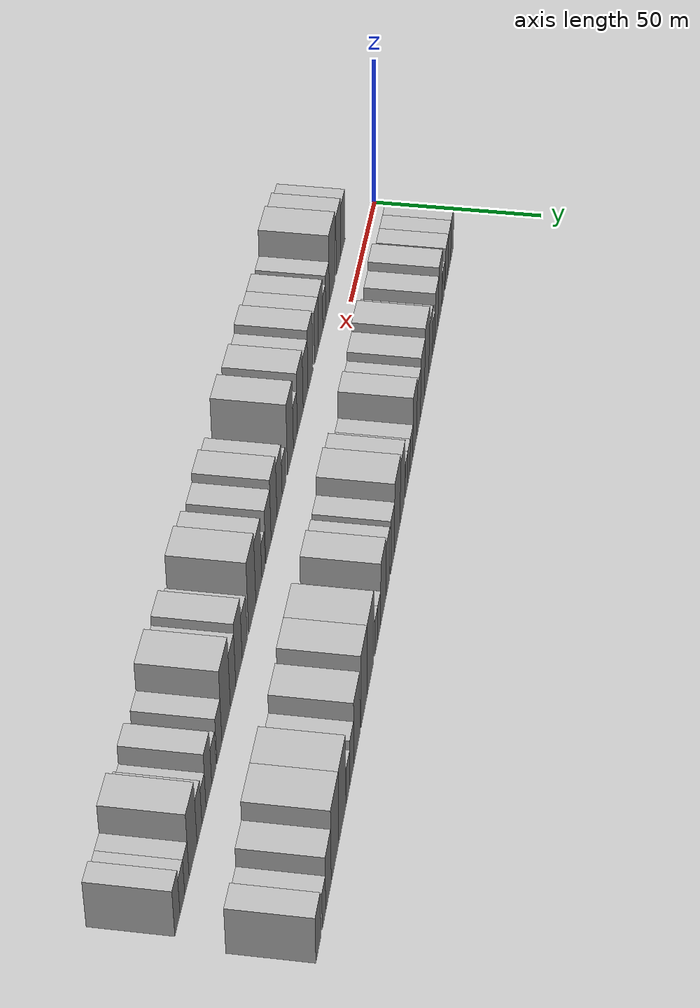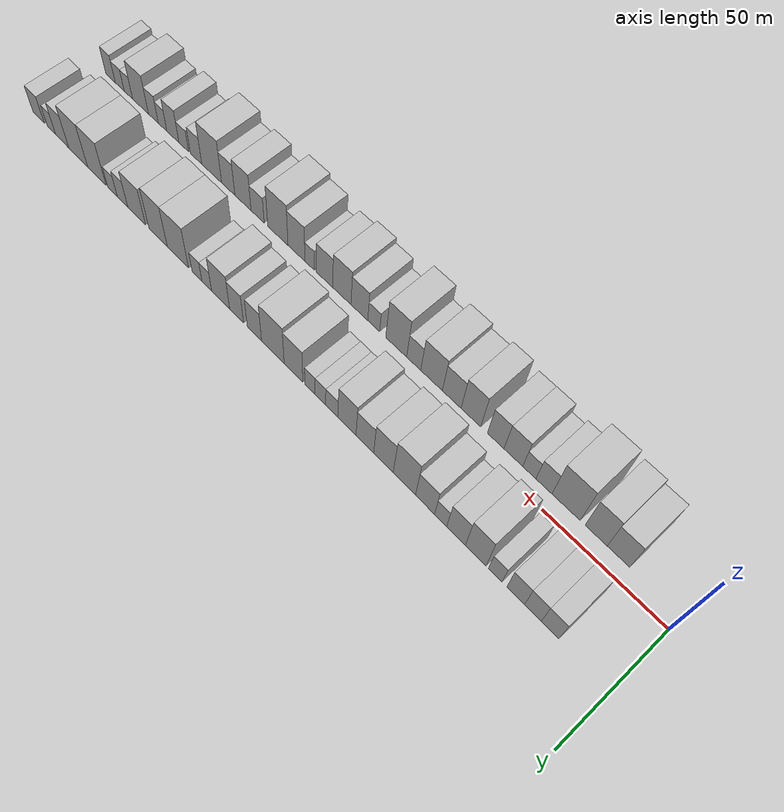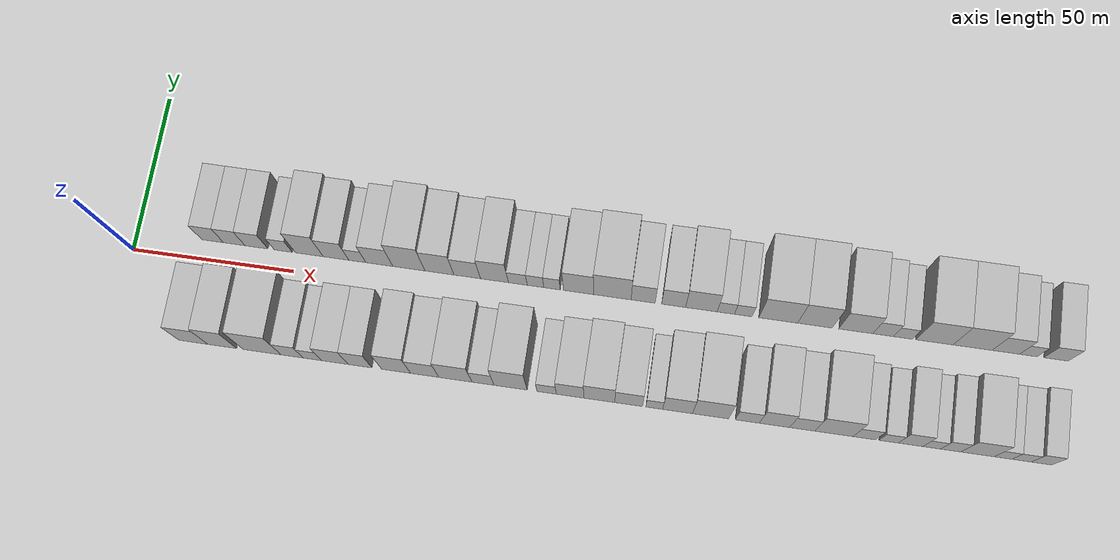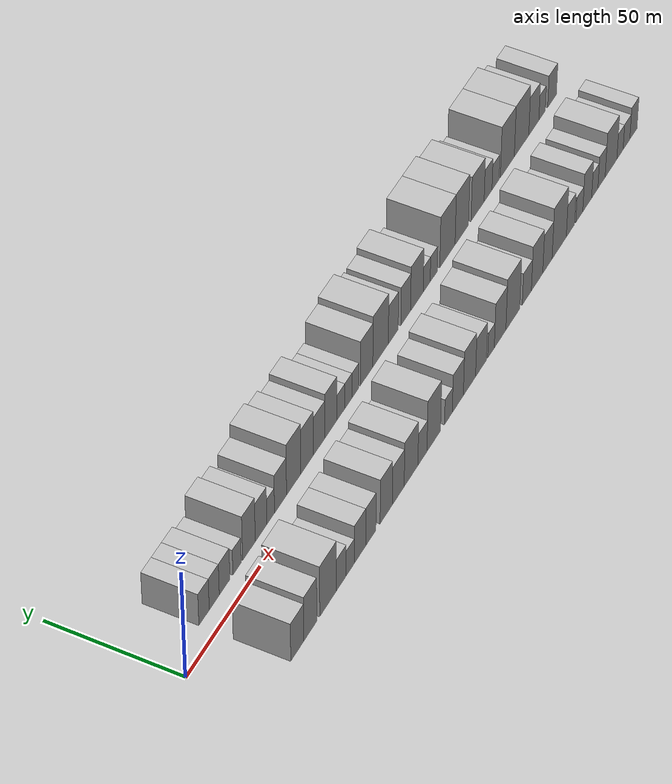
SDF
<sdf version="1.6">
 <world name="default">
  <scene>
   <sky><clouds><speed>12</speed></clouds></sky>
   <ambient>0.4 0.4 0.4 1</ambient>
   <background>0.7 0.7 0.7 1</background>
   <shadows>1</shadows>
  </scene>
  <gravity>0 0 -9.8066</gravity>
  <magnetic_field>6e-06 2.3e-05 -4.2e-05</magnetic_field>
  <physics default="0" name="default_physics" type="ode">
   <ode>
    <solver>
     <type>quick</type>
     <iters>10</iters>
     <sor>1.0</sor>
     <use_dynamic_moi_rescaling>0</use_dynamic_moi_rescaling>
    </solver>
    <constraints>
     <cfm>0</cfm>
     <erp>0.2</erp>
     <contact_max_correcting_vel>100</contact_max_correcting_vel>
     <contact_surface_layer>0.001</contact_surface_layer>
    </constraints>
   </ode>
   <max_step_size>0.004</max_step_size>
   <real_time_factor>1</real_time_factor>
   <real_time_update_rate>250</real_time_update_rate>
  </physics>
  <light name="sun" type="directional">
   <pose>0 0 10 0 0 0</pose>
   <diffuse>0.8 0.8 0.8 1</diffuse>
   <specular>0.2 0.2 0.2 1</specular>
   <attenuation>
    <range>1000</range>
    <constant>0.9</constant>
    <linear>0.01</linear>
    <quadratic>0.001</quadratic>
   </attenuation>
   <direction>-0.5 0.1 -0.9</direction>
  </light>
  <model name="building_1">
   <static>1</static>
   <pose>23.4662 16.0000 0 0.000000 0.000000 1.570796</pose>
   <link name="link">
    <pose>0 0 7.50 0 0 0</pose>
    <collision name="collision"><geometry><box><size>20.0000 6.9323 15.0000</size></box></geometry></collision>
    <visual name="visual">
     <cast_shadows>0</cast_shadows>
     <geometry><box><size>20.0000 6.9323 15.0000</size></box></geometry>
     <material>
      <script>
       <uri>model://HANNAS_wall/materials/scripts</uri>
       <uri>model://HANNAS_wall/materials/textures</uri>
       <name>vrc/HANNAS_wall</name>
      </script>
     </material>
    </visual>
   </link>
  </model>
  <model name="building_2">
   <static>1</static>
   <pose>30.3055 16.0000 0 0.000000 0.000000 1.570796</pose>
   <link name="link">
    <pose>0 0 7.50 0 0 0</pose>
    <collision name="collision"><geometry><box><size>20.0000 6.7464 15.0000</size></box></geometry></collision>
    <visual name="visual">
     <cast_shadows>0</cast_shadows>
     <geometry><box><size>20.0000 6.7464 15.0000</size></box></geometry>
     <material>
      <script>
       <uri>model://HANNAS_wall/materials/scripts</uri>
       <uri>model://HANNAS_wall/materials/textures</uri>
       <name>vrc/HANNAS_wall</name>
      </script>
     </material>
    </visual>
   </link>
  </model>
  <model name="building_3">
   <static>1</static>
   <pose>37.2705 16.0000 0 0.000000 0.000000 1.570796</pose>
   <link name="link">
    <pose>0 0 7.50 0 0 0</pose>
    <collision name="collision"><geometry><box><size>20.0000 7.1836 15.0000</size></box></geometry></collision>
    <visual name="visual">
     <cast_shadows>0</cast_shadows>
     <geometry><box><size>20.0000 7.1836 15.0000</size></box></geometry>
     <material>
      <script>
       <uri>model://HANNAS_wall/materials/scripts</uri>
       <uri>model://HANNAS_wall/materials/textures</uri>
       <name>vrc/HANNAS_wall</name>
      </script>
     </material>
    </visual>
   </link>
  </model>
  <model name="building_4">
   <static>1</static>
   <pose>45.6814 16.0000 0 0.000000 0.000000 1.570796</pose>
   <link name="link">
    <pose>0 0 6.00 0 0 0</pose>
    <collision name="collision"><geometry><box><size>20.0000 5.6382 12.0000</size></box></geometry></collision>
    <visual name="visual">
     <cast_shadows>0</cast_shadows>
     <geometry><box><size>20.0000 5.6382 12.0000</size></box></geometry>
     <material>
      <script>
       <uri>model://HANNAS_wall/materials/scripts</uri>
       <uri>model://HANNAS_wall/materials/textures</uri>
       <name>vrc/HANNAS_wall</name>
      </script>
     </material>
    </visual>
   </link>
  </model>
  <model name="building_5">
   <static>1</static>
   <pose>53.8715 16.0000 0 0.000000 0.000000 1.570796</pose>
   <link name="link">
    <pose>0 0 10.50 0 0 0</pose>
    <collision name="collision"><geometry><box><size>20.0000 8.7419 21.0000</size></box></geometry></collision>
    <visual name="visual">
     <cast_shadows>0</cast_shadows>
     <geometry><box><size>20.0000 8.7419 21.0000</size></box></geometry>
     <material>
      <script>
       <uri>model://HANNAS_wall/materials/scripts</uri>
       <uri>model://HANNAS_wall/materials/textures</uri>
       <name>vrc/HANNAS_wall</name>
      </script>
     </material>
    </visual>
   </link>
  </model>
  <model name="building_6">
   <static>1</static>
   <pose>62.2580 16.0000 0 0.000000 0.000000 1.570796</pose>
   <link name="link">
    <pose>0 0 9.00 0 0 0</pose>
    <collision name="collision"><geometry><box><size>20.0000 8.0312 18.0000</size></box></geometry></collision>
    <visual name="visual">
     <cast_shadows>0</cast_shadows>
     <geometry><box><size>20.0000 8.0312 18.0000</size></box></geometry>
     <material>
      <script>
       <uri>model://HANNAS_wall/materials/scripts</uri>
       <uri>model://HANNAS_wall/materials/textures</uri>
       <name>vrc/HANNAS_wall</name>
      </script>
     </material>
    </visual>
   </link>
  </model>
  <model name="building_7">
   <static>1</static>
   <pose>68.9235 16.0000 0 0.000000 0.000000 1.570796</pose>
   <link name="link">
    <pose>0 0 6.00 0 0 0</pose>
    <collision name="collision"><geometry><box><size>20.0000 5.2998 12.0000</size></box></geometry></collision>
    <visual name="visual">
     <cast_shadows>0</cast_shadows>
     <geometry><box><size>20.0000 5.2998 12.0000</size></box></geometry>
     <material>
      <script>
       <uri>model://HANNAS_wall/materials/scripts</uri>
       <uri>model://HANNAS_wall/materials/textures</uri>
       <name>vrc/HANNAS_wall</name>
      </script>
     </material>
    </visual>
   </link>
  </model>
  <model name="building_8">
   <static>1</static>
   <pose>75.7848 16.0000 0 0.000000 0.000000 1.570796</pose>
   <link name="link">
    <pose>0 0 9.00 0 0 0</pose>
    <collision name="collision"><geometry><box><size>20.0000 8.4229 18.0000</size></box></geometry></collision>
    <visual name="visual">
     <cast_shadows>0</cast_shadows>
     <geometry><box><size>20.0000 8.4229 18.0000</size></box></geometry>
     <material>
      <script>
       <uri>model://HANNAS_wall/materials/scripts</uri>
       <uri>model://HANNAS_wall/materials/textures</uri>
       <name>vrc/HANNAS_wall</name>
      </script>
     </material>
    </visual>
   </link>
  </model>
  <model name="building_9">
   <static>1</static>
   <pose>85.0239 16.0000 0 0.000000 0.000000 1.570796</pose>
   <link name="link">
    <pose>0 0 12.00 0 0 0</pose>
    <collision name="collision"><geometry><box><size>20.0000 10.0552 24.0000</size></box></geometry></collision>
    <visual name="visual">
     <cast_shadows>0</cast_shadows>
     <geometry><box><size>20.0000 10.0552 24.0000</size></box></geometry>
     <material>
      <script>
       <uri>model://HANNAS_wall/materials/scripts</uri>
       <uri>model://HANNAS_wall/materials/textures</uri>
       <name>vrc/HANNAS_wall</name>
      </script>
     </material>
    </visual>
   </link>
  </model>
  <model name="building_10">
   <static>1</static>
   <pose>94.5617 16.0000 0 0.000000 0.000000 1.570796</pose>
   <link name="link">
    <pose>0 0 10.50 0 0 0</pose>
    <collision name="collision"><geometry><box><size>20.0000 9.0204 21.0000</size></box></geometry></collision>
    <visual name="visual">
     <cast_shadows>0</cast_shadows>
     <geometry><box><size>20.0000 9.0204 21.0000</size></box></geometry>
     <material>
      <script>
       <uri>model://HANNAS_wall/materials/scripts</uri>
       <uri>model://HANNAS_wall/materials/textures</uri>
       <name>vrc/HANNAS_wall</name>
      </script>
     </material>
    </visual>
   </link>
  </model>
  <model name="building_11">
   <static>1</static>
   <pose>103.1988 16.0000 0 0.000000 0.000000 1.570796</pose>
   <link name="link">
    <pose>0 0 9.00 0 0 0</pose>
    <collision name="collision"><geometry><box><size>20.0000 8.2538 18.0000</size></box></geometry></collision>
    <visual name="visual">
     <cast_shadows>0</cast_shadows>
     <geometry><box><size>20.0000 8.2538 18.0000</size></box></geometry>
     <material>
      <script>
       <uri>model://HANNAS_wall/materials/scripts</uri>
       <uri>model://HANNAS_wall/materials/textures</uri>
       <name>vrc/HANNAS_wall</name>
      </script>
     </material>
    </visual>
   </link>
  </model>
  <model name="building_12">
   <static>1</static>
   <pose>111.6515 16.0000 0 0.000000 0.000000 1.570796</pose>
   <link name="link">
    <pose>0 0 10.50 0 0 0</pose>
    <collision name="collision"><geometry><box><size>20.0000 8.6517 21.0000</size></box></geometry></collision>
    <visual name="visual">
     <cast_shadows>0</cast_shadows>
     <geometry><box><size>20.0000 8.6517 21.0000</size></box></geometry>
     <material>
      <script>
       <uri>model://HANNAS_wall/materials/scripts</uri>
       <uri>model://HANNAS_wall/materials/textures</uri>
       <name>vrc/HANNAS_wall</name>
      </script>
     </material>
    </visual>
   </link>
  </model>
  <model name="building_13">
   <static>1</static>
   <pose>118.8932 16.0000 0 0.000000 0.000000 1.570796</pose>
   <link name="link">
    <pose>0 0 6.00 0 0 0</pose>
    <collision name="collision"><geometry><box><size>20.0000 5.8317 12.0000</size></box></geometry></collision>
    <visual name="visual">
     <cast_shadows>0</cast_shadows>
     <geometry><box><size>20.0000 5.8317 12.0000</size></box></geometry>
     <material>
      <script>
       <uri>model://HANNAS_wall/materials/scripts</uri>
       <uri>model://HANNAS_wall/materials/textures</uri>
       <name>vrc/HANNAS_wall</name>
      </script>
     </material>
    </visual>
   </link>
  </model>
  <model name="building_14">
   <static>1</static>
   <pose>124.3802 16.0000 0 0.000000 0.000000 1.570796</pose>
   <link name="link">
    <pose>0 0 6.00 0 0 0</pose>
    <collision name="collision"><geometry><box><size>20.0000 5.1422 12.0000</size></box></geometry></collision>
    <visual name="visual">
     <cast_shadows>0</cast_shadows>
     <geometry><box><size>20.0000 5.1422 12.0000</size></box></geometry>
     <material>
      <script>
       <uri>model://HANNAS_wall/materials/scripts</uri>
       <uri>model://HANNAS_wall/materials/textures</uri>
       <name>vrc/HANNAS_wall</name>
      </script>
     </material>
    </visual>
   </link>
  </model>
  <model name="building_15">
   <static>1</static>
   <pose>129.4911 16.0000 0 0.000000 0.000000 1.570796</pose>
   <link name="link">
    <pose>0 0 6.00 0 0 0</pose>
    <collision name="collision"><geometry><box><size>20.0000 5.0797 12.0000</size></box></geometry></collision>
    <visual name="visual">
     <cast_shadows>0</cast_shadows>
     <geometry><box><size>20.0000 5.0797 12.0000</size></box></geometry>
     <material>
      <script>
       <uri>model://HANNAS_wall/materials/scripts</uri>
       <uri>model://HANNAS_wall/materials/textures</uri>
       <name>vrc/HANNAS_wall</name>
      </script>
     </material>
    </visual>
   </link>
  </model>
  <model name="building_16">
   <static>1</static>
   <pose>137.6855 16.0000 0 0.000000 0.000000 1.570796</pose>
   <link name="link">
    <pose>0 0 10.50 0 0 0</pose>
    <collision name="collision"><geometry><box><size>20.0000 9.3090 21.0000</size></box></geometry></collision>
    <visual name="visual">
     <cast_shadows>0</cast_shadows>
     <geometry><box><size>20.0000 9.3090 21.0000</size></box></geometry>
     <material>
      <script>
       <uri>model://HANNAS_wall/materials/scripts</uri>
       <uri>model://HANNAS_wall/materials/textures</uri>
       <name>vrc/HANNAS_wall</name>
      </script>
     </material>
    </visual>
   </link>
  </model>
  <model name="building_17">
   <static>1</static>
   <pose>148.1238 16.0000 0 0.000000 0.000000 1.570796</pose>
   <link name="link">
    <pose>0 0 12.00 0 0 0</pose>
    <collision name="collision"><geometry><box><size>20.0000 11.5676 24.0000</size></box></geometry></collision>
    <visual name="visual">
     <cast_shadows>0</cast_shadows>
     <geometry><box><size>20.0000 11.5676 24.0000</size></box></geometry>
     <material>
      <script>
       <uri>model://HANNAS_wall/materials/scripts</uri>
       <uri>model://HANNAS_wall/materials/textures</uri>
       <name>vrc/HANNAS_wall</name>
      </script>
     </material>
    </visual>
   </link>
  </model>
  <model name="building_18">
   <static>1</static>
   <pose>157.6105 16.0000 0 0.000000 0.000000 1.570796</pose>
   <link name="link">
    <pose>0 0 9.00 0 0 0</pose>
    <collision name="collision"><geometry><box><size>20.0000 7.4056 18.0000</size></box></geometry></collision>
    <visual name="visual">
     <cast_shadows>0</cast_shadows>
     <geometry><box><size>20.0000 7.4056 18.0000</size></box></geometry>
     <material>
      <script>
       <uri>model://HANNAS_wall/materials/scripts</uri>
       <uri>model://HANNAS_wall/materials/textures</uri>
       <name>vrc/HANNAS_wall</name>
      </script>
     </material>
    </visual>
   </link>
  </model>
  <model name="building_19">
   <static>1</static>
   <pose>166.9849 16.0000 0 0.000000 0.000000 1.570796</pose>
   <link name="link">
    <pose>0 0 9.00 0 0 0</pose>
    <collision name="collision"><geometry><box><size>20.0000 7.3432 18.0000</size></box></geometry></collision>
    <visual name="visual">
     <cast_shadows>0</cast_shadows>
     <geometry><box><size>20.0000 7.3432 18.0000</size></box></geometry>
     <material>
      <script>
       <uri>model://HANNAS_wall/materials/scripts</uri>
       <uri>model://HANNAS_wall/materials/textures</uri>
       <name>vrc/HANNAS_wall</name>
      </script>
     </material>
    </visual>
   </link>
  </model>
  <model name="building_20">
   <static>1</static>
   <pose>175.5093 16.0000 0 0.000000 0.000000 1.570796</pose>
   <link name="link">
    <pose>0 0 10.50 0 0 0</pose>
    <collision name="collision"><geometry><box><size>20.0000 9.7057 21.0000</size></box></geometry></collision>
    <visual name="visual">
     <cast_shadows>0</cast_shadows>
     <geometry><box><size>20.0000 9.7057 21.0000</size></box></geometry>
     <material>
      <script>
       <uri>model://HANNAS_wall/materials/scripts</uri>
       <uri>model://HANNAS_wall/materials/textures</uri>
       <name>vrc/HANNAS_wall</name>
      </script>
     </material>
    </visual>
   </link>
  </model>
  <model name="building_21">
   <static>1</static>
   <pose>183.0260 16.0000 0 0.000000 0.000000 1.570796</pose>
   <link name="link">
    <pose>0 0 6.00 0 0 0</pose>
    <collision name="collision"><geometry><box><size>20.0000 5.3277 12.0000</size></box></geometry></collision>
    <visual name="visual">
     <cast_shadows>0</cast_shadows>
     <geometry><box><size>20.0000 5.3277 12.0000</size></box></geometry>
     <material>
      <script>
       <uri>model://HANNAS_wall/materials/scripts</uri>
       <uri>model://HANNAS_wall/materials/textures</uri>
       <name>vrc/HANNAS_wall</name>
      </script>
     </material>
    </visual>
   </link>
  </model>
  <model name="building_22">
   <static>1</static>
   <pose>188.3907 16.0000 0 0.000000 0.000000 1.570796</pose>
   <link name="link">
    <pose>0 0 6.00 0 0 0</pose>
    <collision name="collision"><geometry><box><size>20.0000 5.4015 12.0000</size></box></geometry></collision>
    <visual name="visual">
     <cast_shadows>0</cast_shadows>
     <geometry><box><size>20.0000 5.4015 12.0000</size></box></geometry>
     <material>
      <script>
       <uri>model://HANNAS_wall/materials/scripts</uri>
       <uri>model://HANNAS_wall/materials/textures</uri>
       <name>vrc/HANNAS_wall</name>
      </script>
     </material>
    </visual>
   </link>
  </model>
  <model name="building_23">
   <static>1</static>
   <pose>199.0637 16.0000 0 0.000000 0.000000 1.570796</pose>
   <link name="link">
    <pose>0 0 12.00 0 0 0</pose>
    <collision name="collision"><geometry><box><size>20.0000 11.9444 24.0000</size></box></geometry></collision>
    <visual name="visual">
     <cast_shadows>0</cast_shadows>
     <geometry><box><size>20.0000 11.9444 24.0000</size></box></geometry>
     <material>
      <script>
       <uri>model://HANNAS_wall/materials/scripts</uri>
       <uri>model://HANNAS_wall/materials/textures</uri>
       <name>vrc/HANNAS_wall</name>
      </script>
     </material>
    </visual>
   </link>
  </model>
  <model name="building_24">
   <static>1</static>
   <pose>210.3051 16.0000 0 0.000000 0.000000 1.570796</pose>
   <link name="link">
    <pose>0 0 12.00 0 0 0</pose>
    <collision name="collision"><geometry><box><size>20.0000 10.5384 24.0000</size></box></geometry></collision>
    <visual name="visual">
     <cast_shadows>0</cast_shadows>
     <geometry><box><size>20.0000 10.5384 24.0000</size></box></geometry>
     <material>
      <script>
       <uri>model://HANNAS_wall/materials/scripts</uri>
       <uri>model://HANNAS_wall/materials/textures</uri>
       <name>vrc/HANNAS_wall</name>
      </script>
     </material>
    </visual>
   </link>
  </model>
  <model name="building_25">
   <static>1</static>
   <pose>222.7786 16.0000 0 0.000000 0.000000 1.570796</pose>
   <link name="link">
    <pose>0 0 10.50 0 0 0</pose>
    <collision name="collision"><geometry><box><size>20.0000 10.4088 21.0000</size></box></geometry></collision>
    <visual name="visual">
     <cast_shadows>0</cast_shadows>
     <geometry><box><size>20.0000 10.4088 21.0000</size></box></geometry>
     <material>
      <script>
       <uri>model://HANNAS_wall/materials/scripts</uri>
       <uri>model://HANNAS_wall/materials/textures</uri>
       <name>vrc/HANNAS_wall</name>
      </script>
     </material>
    </visual>
   </link>
  </model>
  <model name="building_26">
   <static>1</static>
   <pose>231.1399 16.0000 0 0.000000 0.000000 1.570796</pose>
   <link name="link">
    <pose>0 0 7.50 0 0 0</pose>
    <collision name="collision"><geometry><box><size>20.0000 6.3137 15.0000</size></box></geometry></collision>
    <visual name="visual">
     <cast_shadows>0</cast_shadows>
     <geometry><box><size>20.0000 6.3137 15.0000</size></box></geometry>
     <material>
      <script>
       <uri>model://HANNAS_wall/materials/scripts</uri>
       <uri>model://HANNAS_wall/materials/textures</uri>
       <name>vrc/HANNAS_wall</name>
      </script>
     </material>
    </visual>
   </link>
  </model>
  <model name="building_27">
   <static>1</static>
   <pose>237.1442 16.0000 0 0.000000 0.000000 1.570796</pose>
   <link name="link">
    <pose>0 0 6.00 0 0 0</pose>
    <collision name="collision"><geometry><box><size>20.0000 5.6949 12.0000</size></box></geometry></collision>
    <visual name="visual">
     <cast_shadows>0</cast_shadows>
     <geometry><box><size>20.0000 5.6949 12.0000</size></box></geometry>
     <material>
      <script>
       <uri>model://HANNAS_wall/materials/scripts</uri>
       <uri>model://HANNAS_wall/materials/textures</uri>
       <name>vrc/HANNAS_wall</name>
      </script>
     </material>
    </visual>
   </link>
  </model>
  <model name="building_28">
   <static>1</static>
   <pose>246.6571 16.0000 0 0.000000 0.000000 1.570796</pose>
   <link name="link">
    <pose>0 0 12.00 0 0 0</pose>
    <collision name="collision"><geometry><box><size>20.0000 11.3309 24.0000</size></box></geometry></collision>
    <visual name="visual">
     <cast_shadows>0</cast_shadows>
     <geometry><box><size>20.0000 11.3309 24.0000</size></box></geometry>
     <material>
      <script>
       <uri>model://HANNAS_wall/materials/scripts</uri>
       <uri>model://HANNAS_wall/materials/textures</uri>
       <name>vrc/HANNAS_wall</name>
      </script>
     </material>
    </visual>
   </link>
  </model>
  <model name="building_29">
   <static>1</static>
   <pose>258.2216 16.0000 0 0.000000 0.000000 1.570796</pose>
   <link name="link">
    <pose>0 0 12.00 0 0 0</pose>
    <collision name="collision"><geometry><box><size>20.0000 11.7980 24.0000</size></box></geometry></collision>
    <visual name="visual">
     <cast_shadows>0</cast_shadows>
     <geometry><box><size>20.0000 11.7980 24.0000</size></box></geometry>
     <material>
      <script>
       <uri>model://HANNAS_wall/materials/scripts</uri>
       <uri>model://HANNAS_wall/materials/textures</uri>
       <name>vrc/HANNAS_wall</name>
      </script>
     </material>
    </visual>
   </link>
  </model>
  <model name="building_30">
   <static>1</static>
   <pose>268.2903 16.0000 0 0.000000 0.000000 1.570796</pose>
   <link name="link">
    <pose>0 0 9.00 0 0 0</pose>
    <collision name="collision"><geometry><box><size>20.0000 8.3393 18.0000</size></box></geometry></collision>
    <visual name="visual">
     <cast_shadows>0</cast_shadows>
     <geometry><box><size>20.0000 8.3393 18.0000</size></box></geometry>
     <material>
      <script>
       <uri>model://HANNAS_wall/materials/scripts</uri>
       <uri>model://HANNAS_wall/materials/textures</uri>
       <name>vrc/HANNAS_wall</name>
      </script>
     </material>
    </visual>
   </link>
  </model>
  <model name="building_31">
   <static>1</static>
   <pose>275.1168 16.0000 0 0.000000 0.000000 1.570796</pose>
   <link name="link">
    <pose>0 0 6.00 0 0 0</pose>
    <collision name="collision"><geometry><box><size>20.0000 5.3137 12.0000</size></box></geometry></collision>
    <visual name="visual">
     <cast_shadows>0</cast_shadows>
     <geometry><box><size>20.0000 5.3137 12.0000</size></box></geometry>
     <material>
      <script>
       <uri>model://HANNAS_wall/materials/scripts</uri>
       <uri>model://HANNAS_wall/materials/textures</uri>
       <name>vrc/HANNAS_wall</name>
      </script>
     </material>
    </visual>
   </link>
  </model>
  <model name="building_32">
   <static>1</static>
   <pose>283.4479 16.0000 0 0.000000 0.000000 1.570796</pose>
   <link name="link">
    <pose>0 0 7.50 0 0 0</pose>
    <collision name="collision"><geometry><box><size>20.0000 7.3486 15.0000</size></box></geometry></collision>
    <visual name="visual">
     <cast_shadows>0</cast_shadows>
     <geometry><box><size>20.0000 7.3486 15.0000</size></box></geometry>
     <material>
      <script>
       <uri>model://HANNAS_wall/materials/scripts</uri>
       <uri>model://HANNAS_wall/materials/textures</uri>
       <name>vrc/HANNAS_wall</name>
      </script>
     </material>
    </visual>
   </link>
  </model>
  <model name="building_33">
   <static>1</static>
   <pose>24.4826 -16.0000 0 0.000000 0.000000 1.570796</pose>
   <link name="link">
    <pose>0 0 9.00 0 0 0</pose>
    <collision name="collision"><geometry><box><size>20.0000 8.9652 18.0000</size></box></geometry></collision>
    <visual name="visual">
     <cast_shadows>0</cast_shadows>
     <geometry><box><size>20.0000 8.9652 18.0000</size></box></geometry>
     <material>
      <script>
       <uri>model://HANNAS_wall/materials/scripts</uri>
       <uri>model://HANNAS_wall/materials/textures</uri>
       <name>vrc/HANNAS_wall</name>
      </script>
     </material>
    </visual>
   </link>
  </model>
  <model name="building_34">
   <static>1</static>
   <pose>33.4205 -16.0000 0 0.000000 0.000000 1.570796</pose>
   <link name="link">
    <pose>0 0 10.50 0 0 0</pose>
    <collision name="collision"><geometry><box><size>20.0000 8.9107 21.0000</size></box></geometry></collision>
    <visual name="visual">
     <cast_shadows>0</cast_shadows>
     <geometry><box><size>20.0000 8.9107 21.0000</size></box></geometry>
     <material>
      <script>
       <uri>model://HANNAS_wall/materials/scripts</uri>
       <uri>model://HANNAS_wall/materials/textures</uri>
       <name>vrc/HANNAS_wall</name>
      </script>
     </material>
    </visual>
   </link>
  </model>
  <model name="building_35">
   <static>1</static>
   <pose>45.7450 -16.0000 0 0.000000 0.000000 1.570796</pose>
   <link name="link">
    <pose>0 0 12.00 0 0 0</pose>
    <collision name="collision"><geometry><box><size>20.0000 11.7382 24.0000</size></box></geometry></collision>
    <visual name="visual">
     <cast_shadows>0</cast_shadows>
     <geometry><box><size>20.0000 11.7382 24.0000</size></box></geometry>
     <material>
      <script>
       <uri>model://HANNAS_wall/materials/scripts</uri>
       <uri>model://HANNAS_wall/materials/textures</uri>
       <name>vrc/HANNAS_wall</name>
      </script>
     </material>
    </visual>
   </link>
  </model>
  <model name="building_36">
   <static>1</static>
   <pose>55.0073 -16.0000 0 0.000000 0.000000 1.570796</pose>
   <link name="link">
    <pose>0 0 7.50 0 0 0</pose>
    <collision name="collision"><geometry><box><size>20.0000 6.7863 15.0000</size></box></geometry></collision>
    <visual name="visual">
     <cast_shadows>0</cast_shadows>
     <geometry><box><size>20.0000 6.7863 15.0000</size></box></geometry>
     <material>
      <script>
       <uri>model://HANNAS_wall/materials/scripts</uri>
       <uri>model://HANNAS_wall/materials/textures</uri>
       <name>vrc/HANNAS_wall</name>
      </script>
     </material>
    </visual>
   </link>
  </model>
  <model name="building_37">
   <static>1</static>
   <pose>61.2317 -16.0000 0 0.000000 0.000000 1.570796</pose>
   <link name="link">
    <pose>0 0 6.00 0 0 0</pose>
    <collision name="collision"><geometry><box><size>20.0000 5.6625 12.0000</size></box></geometry></collision>
    <visual name="visual">
     <cast_shadows>0</cast_shadows>
     <geometry><box><size>20.0000 5.6625 12.0000</size></box></geometry>
     <material>
      <script>
       <uri>model://HANNAS_wall/materials/scripts</uri>
       <uri>model://HANNAS_wall/materials/textures</uri>
       <name>vrc/HANNAS_wall</name>
      </script>
     </material>
    </visual>
   </link>
  </model>
  <model name="building_38">
   <static>1</static>
   <pose>68.1342 -16.0000 0 0.000000 0.000000 1.570796</pose>
   <link name="link">
    <pose>0 0 9.00 0 0 0</pose>
    <collision name="collision"><geometry><box><size>20.0000 8.1426 18.0000</size></box></geometry></collision>
    <visual name="visual">
     <cast_shadows>0</cast_shadows>
     <geometry><box><size>20.0000 8.1426 18.0000</size></box></geometry>
     <material>
      <script>
       <uri>model://HANNAS_wall/materials/scripts</uri>
       <uri>model://HANNAS_wall/materials/textures</uri>
       <name>vrc/HANNAS_wall</name>
      </script>
     </material>
    </visual>
   </link>
  </model>
  <model name="building_39">
   <static>1</static>
   <pose>75.8522 -16.0000 0 0.000000 0.000000 1.570796</pose>
   <link name="link">
    <pose>0 0 9.00 0 0 0</pose>
    <collision name="collision"><geometry><box><size>20.0000 7.2933 18.0000</size></box></geometry></collision>
    <visual name="visual">
     <cast_shadows>0</cast_shadows>
     <geometry><box><size>20.0000 7.2933 18.0000</size></box></geometry>
     <material>
      <script>
       <uri>model://HANNAS_wall/materials/scripts</uri>
       <uri>model://HANNAS_wall/materials/textures</uri>
       <name>vrc/HANNAS_wall</name>
      </script>
     </material>
    </visual>
   </link>
  </model>
  <model name="building_40">
   <static>1</static>
   <pose>86.9302 -16.0000 0 0.000000 0.000000 1.570796</pose>
   <link name="link">
    <pose>0 0 10.50 0 0 0</pose>
    <collision name="collision"><geometry><box><size>20.0000 8.8628 21.0000</size></box></geometry></collision>
    <visual name="visual">
     <cast_shadows>0</cast_shadows>
     <geometry><box><size>20.0000 8.8628 21.0000</size></box></geometry>
     <material>
      <script>
       <uri>model://HANNAS_wall/materials/scripts</uri>
       <uri>model://HANNAS_wall/materials/textures</uri>
       <name>vrc/HANNAS_wall</name>
      </script>
     </material>
    </visual>
   </link>
  </model>
  <model name="building_41">
   <static>1</static>
   <pose>95.6631 -16.0000 0 0.000000 0.000000 1.570796</pose>
   <link name="link">
    <pose>0 0 9.00 0 0 0</pose>
    <collision name="collision"><geometry><box><size>20.0000 8.6029 18.0000</size></box></geometry></collision>
    <visual name="visual">
     <cast_shadows>0</cast_shadows>
     <geometry><box><size>20.0000 8.6029 18.0000</size></box></geometry>
     <material>
      <script>
       <uri>model://HANNAS_wall/materials/scripts</uri>
       <uri>model://HANNAS_wall/materials/textures</uri>
       <name>vrc/HANNAS_wall</name>
      </script>
     </material>
    </visual>
   </link>
  </model>
  <model name="building_42">
   <static>1</static>
   <pose>105.0150 -16.0000 0 0.000000 0.000000 1.570796</pose>
   <link name="link">
    <pose>0 0 10.50 0 0 0</pose>
    <collision name="collision"><geometry><box><size>20.0000 10.1010 21.0000</size></box></geometry></collision>
    <visual name="visual">
     <cast_shadows>0</cast_shadows>
     <geometry><box><size>20.0000 10.1010 21.0000</size></box></geometry>
     <material>
      <script>
       <uri>model://HANNAS_wall/materials/scripts</uri>
       <uri>model://HANNAS_wall/materials/textures</uri>
       <name>vrc/HANNAS_wall</name>
      </script>
     </material>
    </visual>
   </link>
  </model>
  <model name="building_43">
   <static>1</static>
   <pose>113.4232 -16.0000 0 0.000000 0.000000 1.570796</pose>
   <link name="link">
    <pose>0 0 7.50 0 0 0</pose>
    <collision name="collision"><geometry><box><size>20.0000 6.7153 15.0000</size></box></geometry></collision>
    <visual name="visual">
     <cast_shadows>0</cast_shadows>
     <geometry><box><size>20.0000 6.7153 15.0000</size></box></geometry>
     <material>
      <script>
       <uri>model://HANNAS_wall/materials/scripts</uri>
       <uri>model://HANNAS_wall/materials/textures</uri>
       <name>vrc/HANNAS_wall</name>
      </script>
     </material>
    </visual>
   </link>
  </model>
  <model name="building_44">
   <static>1</static>
   <pose>121.8232 -16.0000 0 0.000000 0.000000 1.570796</pose>
   <link name="link">
    <pose>0 0 12.00 0 0 0</pose>
    <collision name="collision"><geometry><box><size>20.0000 10.0846 24.0000</size></box></geometry></collision>
    <visual name="visual">
     <cast_shadows>0</cast_shadows>
     <geometry><box><size>20.0000 10.0846 24.0000</size></box></geometry>
     <material>
      <script>
       <uri>model://HANNAS_wall/materials/scripts</uri>
       <uri>model://HANNAS_wall/materials/textures</uri>
       <name>vrc/HANNAS_wall</name>
      </script>
     </material>
    </visual>
   </link>
  </model>
  <model name="building_45">
   <static>1</static>
   <pose>132.7873 -16.0000 0 0.000000 0.000000 1.570796</pose>
   <link name="link">
    <pose>0 0 6.00 0 0 0</pose>
    <collision name="collision"><geometry><box><size>20.0000 5.8436 12.0000</size></box></geometry></collision>
    <visual name="visual">
     <cast_shadows>0</cast_shadows>
     <geometry><box><size>20.0000 5.8436 12.0000</size></box></geometry>
     <material>
      <script>
       <uri>model://HANNAS_wall/materials/scripts</uri>
       <uri>model://HANNAS_wall/materials/textures</uri>
       <name>vrc/HANNAS_wall</name>
      </script>
     </material>
    </visual>
   </link>
  </model>
  <model name="building_46">
   <static>1</static>
   <pose>139.8947 -16.0000 0 0.000000 0.000000 1.570796</pose>
   <link name="link">
    <pose>0 0 9.00 0 0 0</pose>
    <collision name="collision"><geometry><box><size>20.0000 8.3712 18.0000</size></box></geometry></collision>
    <visual name="visual">
     <cast_shadows>0</cast_shadows>
     <geometry><box><size>20.0000 8.3712 18.0000</size></box></geometry>
     <material>
      <script>
       <uri>model://HANNAS_wall/materials/scripts</uri>
       <uri>model://HANNAS_wall/materials/textures</uri>
       <name>vrc/HANNAS_wall</name>
      </script>
     </material>
    </visual>
   </link>
  </model>
  <model name="building_47">
   <static>1</static>
   <pose>148.7416 -16.0000 0 0.000000 0.000000 1.570796</pose>
   <link name="link">
    <pose>0 0 10.50 0 0 0</pose>
    <collision name="collision"><geometry><box><size>20.0000 9.3226 21.0000</size></box></geometry></collision>
    <visual name="visual">
     <cast_shadows>0</cast_shadows>
     <geometry><box><size>20.0000 9.3226 21.0000</size></box></geometry>
     <material>
      <script>
       <uri>model://HANNAS_wall/materials/scripts</uri>
       <uri>model://HANNAS_wall/materials/textures</uri>
       <name>vrc/HANNAS_wall</name>
      </script>
     </material>
    </visual>
   </link>
  </model>
  <model name="building_48">
   <static>1</static>
   <pose>157.5976 -16.0000 0 0.000000 0.000000 1.570796</pose>
   <link name="link">
    <pose>0 0 9.00 0 0 0</pose>
    <collision name="collision"><geometry><box><size>20.0000 8.3894 18.0000</size></box></geometry></collision>
    <visual name="visual">
     <cast_shadows>0</cast_shadows>
     <geometry><box><size>20.0000 8.3894 18.0000</size></box></geometry>
     <material>
      <script>
       <uri>model://HANNAS_wall/materials/scripts</uri>
       <uri>model://HANNAS_wall/materials/textures</uri>
       <name>vrc/HANNAS_wall</name>
      </script>
     </material>
    </visual>
   </link>
  </model>
  <model name="building_49">
   <static>1</static>
   <pose>165.3166 -16.0000 0 0.000000 0.000000 1.570796</pose>
   <link name="link">
    <pose>0 0 6.00 0 0 0</pose>
    <collision name="collision"><geometry><box><size>20.0000 5.0486 12.0000</size></box></geometry></collision>
    <visual name="visual">
     <cast_shadows>0</cast_shadows>
     <geometry><box><size>20.0000 5.0486 12.0000</size></box></geometry>
     <material>
      <script>
       <uri>model://HANNAS_wall/materials/scripts</uri>
       <uri>model://HANNAS_wall/materials/textures</uri>
       <name>vrc/HANNAS_wall</name>
      </script>
     </material>
    </visual>
   </link>
  </model>
  <model name="building_50">
   <static>1</static>
   <pose>172.3421 -16.0000 0 0.000000 0.000000 1.570796</pose>
   <link name="link">
    <pose>0 0 10.50 0 0 0</pose>
    <collision name="collision"><geometry><box><size>20.0000 9.0023 21.0000</size></box></geometry></collision>
    <visual name="visual">
     <cast_shadows>0</cast_shadows>
     <geometry><box><size>20.0000 9.0023 21.0000</size></box></geometry>
     <material>
      <script>
       <uri>model://HANNAS_wall/materials/scripts</uri>
       <uri>model://HANNAS_wall/materials/textures</uri>
       <name>vrc/HANNAS_wall</name>
      </script>
     </material>
    </visual>
   </link>
  </model>
  <model name="building_51">
   <static>1</static>
   <pose>182.2715 -16.0000 0 0.000000 0.000000 1.570796</pose>
   <link name="link">
    <pose>0 0 12.00 0 0 0</pose>
    <collision name="collision"><geometry><box><size>20.0000 10.8565 24.0000</size></box></geometry></collision>
    <visual name="visual">
     <cast_shadows>0</cast_shadows>
     <geometry><box><size>20.0000 10.8565 24.0000</size></box></geometry>
     <material>
      <script>
       <uri>model://HANNAS_wall/materials/scripts</uri>
       <uri>model://HANNAS_wall/materials/textures</uri>
       <name>vrc/HANNAS_wall</name>
      </script>
     </material>
    </visual>
   </link>
  </model>
  <model name="building_52">
   <static>1</static>
   <pose>193.3189 -16.0000 0 0.000000 0.000000 1.570796</pose>
   <link name="link">
    <pose>0 0 7.50 0 0 0</pose>
    <collision name="collision"><geometry><box><size>20.0000 7.2383 15.0000</size></box></geometry></collision>
    <visual name="visual">
     <cast_shadows>0</cast_shadows>
     <geometry><box><size>20.0000 7.2383 15.0000</size></box></geometry>
     <material>
      <script>
       <uri>model://HANNAS_wall/materials/scripts</uri>
       <uri>model://HANNAS_wall/materials/textures</uri>
       <name>vrc/HANNAS_wall</name>
      </script>
     </material>
    </visual>
   </link>
  </model>
  <model name="building_53">
   <static>1</static>
   <pose>201.4748 -16.0000 0 0.000000 0.000000 1.570796</pose>
   <link name="link">
    <pose>0 0 10.50 0 0 0</pose>
    <collision name="collision"><geometry><box><size>20.0000 9.0736 21.0000</size></box></geometry></collision>
    <visual name="visual">
     <cast_shadows>0</cast_shadows>
     <geometry><box><size>20.0000 9.0736 21.0000</size></box></geometry>
     <material>
      <script>
       <uri>model://HANNAS_wall/materials/scripts</uri>
       <uri>model://HANNAS_wall/materials/textures</uri>
       <name>vrc/HANNAS_wall</name>
      </script>
     </material>
    </visual>
   </link>
  </model>
  <model name="building_54">
   <static>1</static>
   <pose>209.7642 -16.0000 0 0.000000 0.000000 1.570796</pose>
   <link name="link">
    <pose>0 0 9.00 0 0 0</pose>
    <collision name="collision"><geometry><box><size>20.0000 7.5051 18.0000</size></box></geometry></collision>
    <visual name="visual">
     <cast_shadows>0</cast_shadows>
     <geometry><box><size>20.0000 7.5051 18.0000</size></box></geometry>
     <material>
      <script>
       <uri>model://HANNAS_wall/materials/scripts</uri>
       <uri>model://HANNAS_wall/materials/textures</uri>
       <name>vrc/HANNAS_wall</name>
      </script>
     </material>
    </visual>
   </link>
  </model>
  <model name="building_55">
   <static>1</static>
   <pose>219.2790 -16.0000 0 0.000000 0.000000 1.570796</pose>
   <link name="link">
    <pose>0 0 12.00 0 0 0</pose>
    <collision name="collision"><geometry><box><size>20.0000 11.5245 24.0000</size></box></geometry></collision>
    <visual name="visual">
     <cast_shadows>0</cast_shadows>
     <geometry><box><size>20.0000 11.5245 24.0000</size></box></geometry>
     <material>
      <script>
       <uri>model://HANNAS_wall/materials/scripts</uri>
       <uri>model://HANNAS_wall/materials/textures</uri>
       <name>vrc/HANNAS_wall</name>
      </script>
     </material>
    </visual>
   </link>
  </model>
  <model name="building_56">
   <static>1</static>
   <pose>228.3842 -16.0000 0 0.000000 0.000000 1.570796</pose>
   <link name="link">
    <pose>0 0 7.50 0 0 0</pose>
    <collision name="collision"><geometry><box><size>20.0000 6.6860 15.0000</size></box></geometry></collision>
    <visual name="visual">
     <cast_shadows>0</cast_shadows>
     <geometry><box><size>20.0000 6.6860 15.0000</size></box></geometry>
     <material>
      <script>
       <uri>model://HANNAS_wall/materials/scripts</uri>
       <uri>model://HANNAS_wall/materials/textures</uri>
       <name>vrc/HANNAS_wall</name>
      </script>
     </material>
    </visual>
   </link>
  </model>
  <model name="building_57">
   <static>1</static>
   <pose>235.6269 -16.0000 0 0.000000 0.000000 1.570796</pose>
   <link name="link">
    <pose>0 0 6.00 0 0 0</pose>
    <collision name="collision"><geometry><box><size>20.0000 5.7994 12.0000</size></box></geometry></collision>
    <visual name="visual">
     <cast_shadows>0</cast_shadows>
     <geometry><box><size>20.0000 5.7994 12.0000</size></box></geometry>
     <material>
      <script>
       <uri>model://HANNAS_wall/materials/scripts</uri>
       <uri>model://HANNAS_wall/materials/textures</uri>
       <name>vrc/HANNAS_wall</name>
      </script>
     </material>
    </visual>
   </link>
  </model>
  <model name="building_58">
   <static>1</static>
   <pose>242.1808 -16.0000 0 0.000000 0.000000 1.570796</pose>
   <link name="link">
    <pose>0 0 9.00 0 0 0</pose>
    <collision name="collision"><geometry><box><size>20.0000 7.3084 18.0000</size></box></geometry></collision>
    <visual name="visual">
     <cast_shadows>0</cast_shadows>
     <geometry><box><size>20.0000 7.3084 18.0000</size></box></geometry>
     <material>
      <script>
       <uri>model://HANNAS_wall/materials/scripts</uri>
       <uri>model://HANNAS_wall/materials/textures</uri>
       <name>vrc/HANNAS_wall</name>
      </script>
     </material>
    </visual>
   </link>
  </model>
  <model name="building_59">
   <static>1</static>
   <pose>248.4457 -16.0000 0 0.000000 0.000000 1.570796</pose>
   <link name="link">
    <pose>0 0 6.00 0 0 0</pose>
    <collision name="collision"><geometry><box><size>20.0000 5.2215 12.0000</size></box></geometry></collision>
    <visual name="visual">
     <cast_shadows>0</cast_shadows>
     <geometry><box><size>20.0000 5.2215 12.0000</size></box></geometry>
     <material>
      <script>
       <uri>model://HANNAS_wall/materials/scripts</uri>
       <uri>model://HANNAS_wall/materials/textures</uri>
       <name>vrc/HANNAS_wall</name>
      </script>
     </material>
    </visual>
   </link>
  </model>
  <model name="building_60">
   <static>1</static>
   <pose>254.0720 -16.0000 0 0.000000 0.000000 1.570796</pose>
   <link name="link">
    <pose>0 0 7.50 0 0 0</pose>
    <collision name="collision"><geometry><box><size>20.0000 6.0310 15.0000</size></box></geometry></collision>
    <visual name="visual">
     <cast_shadows>0</cast_shadows>
     <geometry><box><size>20.0000 6.0310 15.0000</size></box></geometry>
     <material>
      <script>
       <uri>model://HANNAS_wall/materials/scripts</uri>
       <uri>model://HANNAS_wall/materials/textures</uri>
       <name>vrc/HANNAS_wall</name>
      </script>
     </material>
    </visual>
   </link>
  </model>
  <model name="building_61">
   <static>1</static>
   <pose>262.0137 -16.0000 0 0.000000 0.000000 1.570796</pose>
   <link name="link">
    <pose>0 0 10.50 0 0 0</pose>
    <collision name="collision"><geometry><box><size>20.0000 9.8523 21.0000</size></box></geometry></collision>
    <visual name="visual">
     <cast_shadows>0</cast_shadows>
     <geometry><box><size>20.0000 9.8523 21.0000</size></box></geometry>
     <material>
      <script>
       <uri>model://HANNAS_wall/materials/scripts</uri>
       <uri>model://HANNAS_wall/materials/textures</uri>
       <name>vrc/HANNAS_wall</name>
      </script>
     </material>
    </visual>
   </link>
  </model>
  <model name="building_62">
   <static>1</static>
   <pose>269.5707 -16.0000 0 0.000000 0.000000 1.570796</pose>
   <link name="link">
    <pose>0 0 6.00 0 0 0</pose>
    <collision name="collision"><geometry><box><size>20.0000 5.2618 12.0000</size></box></geometry></collision>
    <visual name="visual">
     <cast_shadows>0</cast_shadows>
     <geometry><box><size>20.0000 5.2618 12.0000</size></box></geometry>
     <material>
      <script>
       <uri>model://HANNAS_wall/materials/scripts</uri>
       <uri>model://HANNAS_wall/materials/textures</uri>
       <name>vrc/HANNAS_wall</name>
      </script>
     </material>
    </visual>
   </link>
  </model>
  <model name="building_63">
   <static>1</static>
   <pose>275.0530 -16.0000 0 0.000000 0.000000 1.570796</pose>
   <link name="link">
    <pose>0 0 6.00 0 0 0</pose>
    <collision name="collision"><geometry><box><size>20.0000 5.7027 12.0000</size></box></geometry></collision>
    <visual name="visual">
     <cast_shadows>0</cast_shadows>
     <geometry><box><size>20.0000 5.7027 12.0000</size></box></geometry>
     <material>
      <script>
       <uri>model://HANNAS_wall/materials/scripts</uri>
       <uri>model://HANNAS_wall/materials/textures</uri>
       <name>vrc/HANNAS_wall</name>
      </script>
     </material>
    </visual>
   </link>
  </model>
  <model name="building_64">
   <static>1</static>
   <pose>280.9532 -16.0000 0 0.000000 0.000000 1.570796</pose>
   <link name="link">
    <pose>0 0 7.50 0 0 0</pose>
    <collision name="collision"><geometry><box><size>20.0000 6.0976 15.0000</size></box></geometry></collision>
    <visual name="visual">
     <cast_shadows>0</cast_shadows>
     <geometry><box><size>20.0000 6.0976 15.0000</size></box></geometry>
     <material>
      <script>
       <uri>model://HANNAS_wall/materials/scripts</uri>
       <uri>model://HANNAS_wall/materials/textures</uri>
       <name>vrc/HANNAS_wall</name>
      </script>
     </material>
    </visual>
   </link>
  </model>
 </world>
</sdf>
